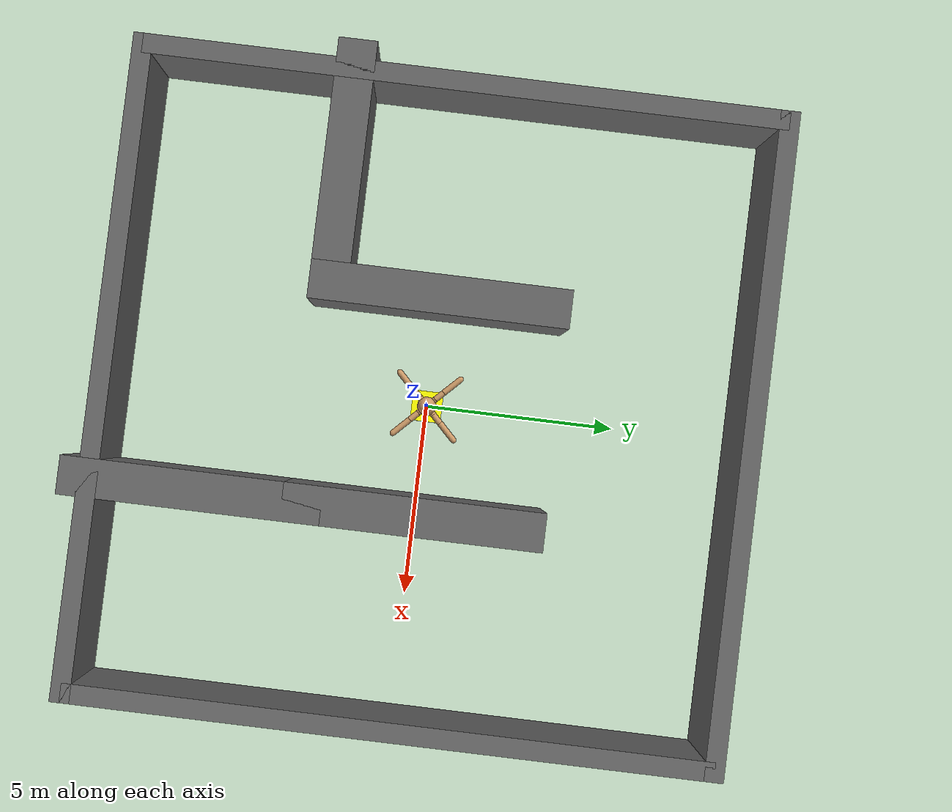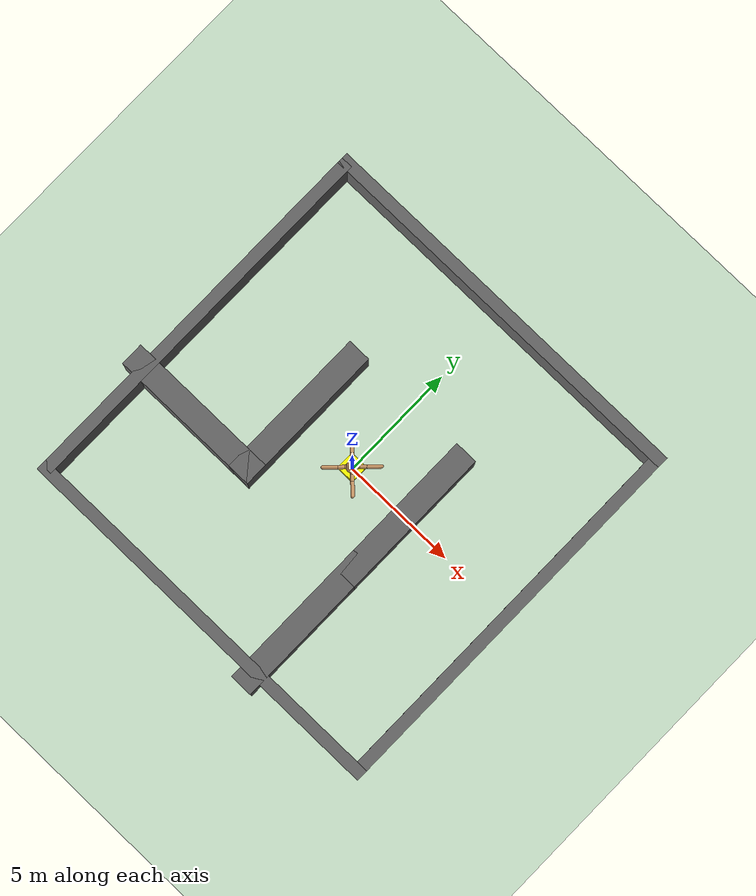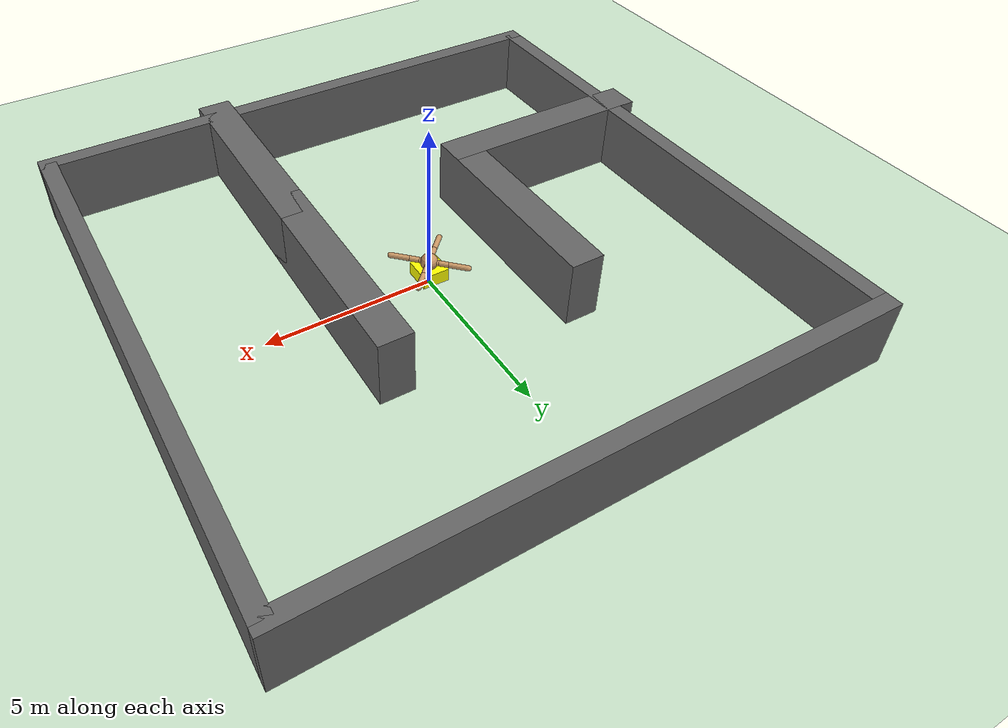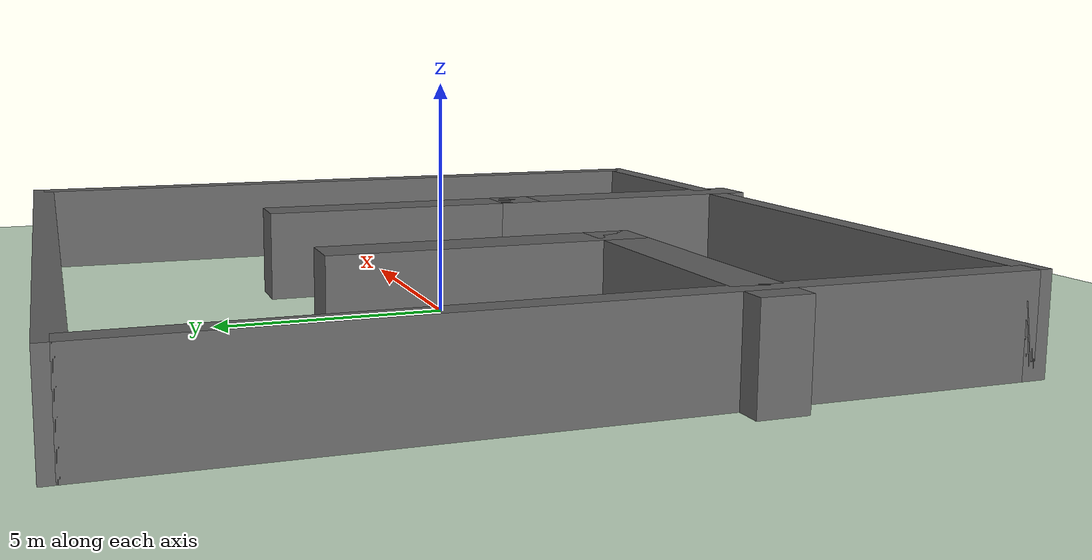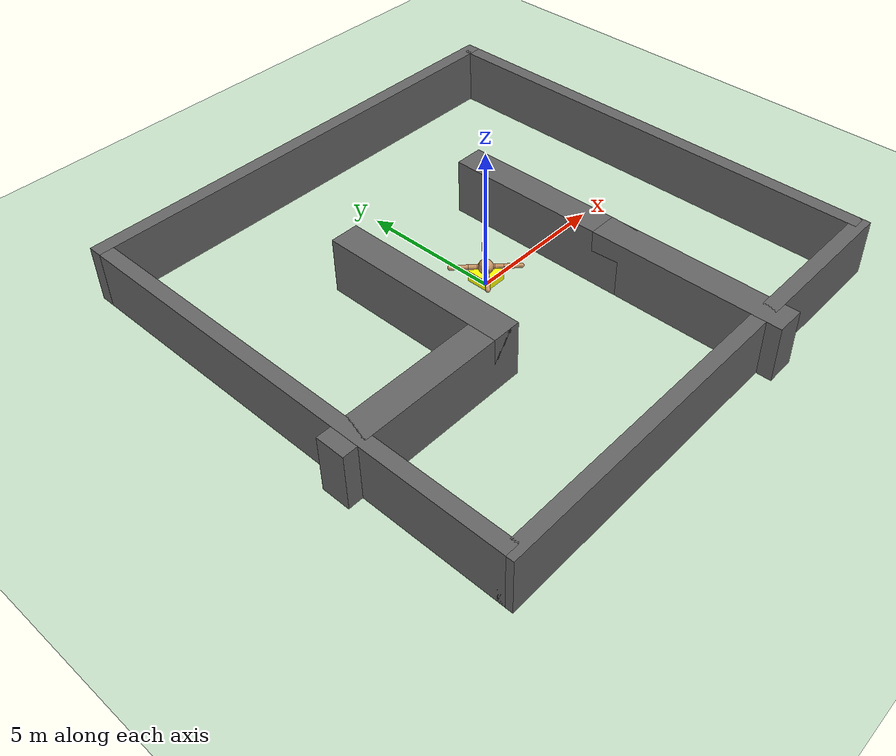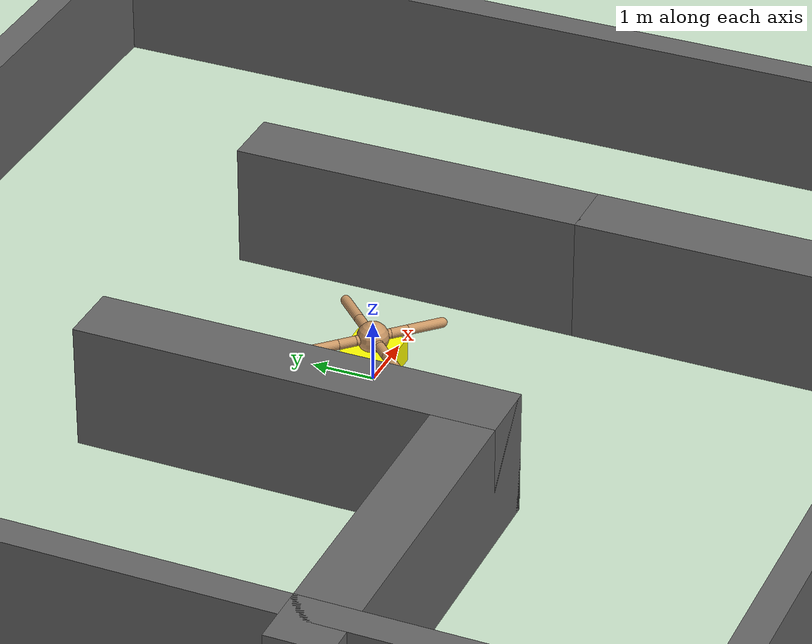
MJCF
<mujoco model="ant">
  <compiler angle="degree" coordinate="local" inertiafromgeom="true" />
  <option integrator="RK4" timestep="0.02" />
  <custom>
    <numeric data="0.0 0.0 0.55 1.0 0.0 0.0 0.0 0.0 1.0 0.0 -1.0 0.0 -1.0 0.0 1.0" name="init_qpos" />
  </custom>
  <default>
    <joint armature="1" damping="1" limited="true" />
    <geom conaffinity="0" condim="3" density="5.0" friction="1 0.5 0.5" margin="0.01" rgba="0.8 0.6 0.4 1" />
  </default>
  <asset>
    <texture builtin="gradient" height="100" rgb1="1 1 1" rgb2="0 0 0" type="skybox" width="100" />
    <texture builtin="flat" height="1278" mark="cross" markrgb="1 1 1" name="texgeom" random="0.01" rgb1="0.8 0.6 0.4" rgb2="0.8 0.6 0.4" type="cube" width="127" />
    <texture builtin="flat" height="100" name="texplane" rgb1="0.4 0.3 0.2" rgb2="0.4 0.3 0.2" type="2d" width="100" />
    <material name="MatPlane" reflectance="0.5" shininess="1" specular="1" texrepeat="60 60" texture="texplane" />
    <material name="geom" texture="texgeom" texuniform="true" />
  </asset>
  <worldbody>
    <light cutoff="50" diffuse="1 1 1" dir="-0 0 -1.3" directional="true" exponent="1" pos="0 0 1.3" specular=".1 .1 .1" />
    <geom conaffinity="1" condim="3" material="MatPlane" name="floor" pos="0 0 0" rgba="0.8 0.9 0.8 1" size="40 40 40" type="plane" />
    <body name="torso" pos="0 0 0.75">
      <camera mode="trackcom" name="track" pos="0 -3 0.3" xyaxes="1 0 0 0 0 1" />
      <geom name="torso_geom" pos="0 0 0" size="0.25" type="sphere" />
      <joint armature="0" damping="0" limited="false" margin="0.01" name="root" pos="0 0 0" type="free" />
      <body name="front_left_leg" pos="0 0 0">
        <geom fromto="0.0 0.0 0.0 0.2 0.2 0.0" name="aux_1_geom" size="0.08" type="capsule" />
        <body name="aux_1" pos="0.2 0.2 0">
          <joint axis="0 0 1" name="hip_1" pos="0.0 0.0 0.0" range="-30 30" type="hinge" />
          <geom fromto="0.0 0.0 0.0 0.2 0.2 0.0" name="left_leg_geom" size="0.08" type="capsule" />
          <body pos="0.2 0.2 0">
            <joint axis="-1 1 0" name="ankle_1" pos="0.0 0.0 0.0" range="30 70" type="hinge" />
            <geom fromto="0.0 0.0 0.0 0.4 0.4 0.0" name="left_ankle_geom" size="0.08" type="capsule" />
          </body>
        </body>
      </body>
      <body name="front_right_leg" pos="0 0 0">
        <geom fromto="0.0 0.0 0.0 -0.2 0.2 0.0" name="aux_2_geom" size="0.08" type="capsule" />
        <body name="aux_2" pos="-0.2 0.2 0">
          <joint axis="0 0 1" name="hip_2" pos="0.0 0.0 0.0" range="-30 30" type="hinge" />
          <geom fromto="0.0 0.0 0.0 -0.2 0.2 0.0" name="right_leg_geom" size="0.08" type="capsule" />
          <body pos="-0.2 0.2 0">
            <joint axis="1 1 0" name="ankle_2" pos="0.0 0.0 0.0" range="-70 -30" type="hinge" />
            <geom fromto="0.0 0.0 0.0 -0.4 0.4 0.0" name="right_ankle_geom" size="0.08" type="capsule" />
          </body>
        </body>
      </body>
      <body name="back_leg" pos="0 0 0">
        <geom fromto="0.0 0.0 0.0 -0.2 -0.2 0.0" name="aux_3_geom" size="0.08" type="capsule" />
        <body name="aux_3" pos="-0.2 -0.2 0">
          <joint axis="0 0 1" name="hip_3" pos="0.0 0.0 0.0" range="-30 30" type="hinge" />
          <geom fromto="0.0 0.0 0.0 -0.2 -0.2 0.0" name="back_leg_geom" size="0.08" type="capsule" />
          <body pos="-0.2 -0.2 0">
            <joint axis="-1 1 0" name="ankle_3" pos="0.0 0.0 0.0" range="-70 -30" type="hinge" />
            <geom fromto="0.0 0.0 0.0 -0.4 -0.4 0.0" name="third_ankle_geom" size="0.08" type="capsule" />
          </body>
        </body>
      </body>
      <body name="right_back_leg" pos="0 0 0">
        <geom fromto="0.0 0.0 0.0 0.2 -0.2 0.0" name="aux_4_geom" size="0.08" type="capsule" />
        <body name="aux_4" pos="0.2 -0.2 0">
          <joint axis="0 0 1" name="hip_4" pos="0.0 0.0 0.0" range="-30 30" type="hinge" />
          <geom fromto="0.0 0.0 0.0 0.2 -0.2 0.0" name="rightback_leg_geom" size="0.08" type="capsule" />
          <body pos="0.2 -0.2 0">
            <joint axis="1 1 0" name="ankle_4" pos="0.0 0.0 0.0" range="30 70" type="hinge" />
            <geom fromto="0.0 0.0 0.0 0.4 -0.4 0.0" name="fourth_ankle_geom" size="0.08" type="capsule" />
          </body>
        </body>
      </body>
    </body>

    <body name="east_wall" pos="8.25 0 1">
      <geom conaffinity="1" contype="1" rgba="0.4 0.4 0.4 1" size="0.25 8.25 1" type="box" />
    </body>
    <body name="north_wall" pos="0 8.25 1">
      <geom conaffinity="1" contype="1" rgba="0.4 0.4 0.4 1" size="8.5 0.25 1" type="box" />
    </body>
    <body name="west_wall" pos="-8.25 0 1">
      <geom conaffinity="1" contype="1" rgba="0.4 0.4 0.4 1" size="0.25 8.25 1" type="box" />
    </body>
    <body name="south_wall" pos="0 -8.25 1">
      <geom conaffinity="1" contype="1" rgba="0.4 0.4 0.4 1" size="8.5 0.25 1" type="box" />
    </body>

    <body mocap="true" name="goal_platform" pos="0 0 0.4">
				<site rgba="1 1 0 1" size="0.4 0.4 0.2" type="box" />
		</body>

    <body mocap="true" name="subgoal_0" pos="0 0 0.4">
				<site rgba="1 0 1 0" size="0.4 0.4 0.2" type="box" />
		</body>
    <body mocap="true" name="subgoal_1" pos="0 0 0.4">
				<site rgba="0 1 0 0" size="0.4 0.4 0.2" type="box" />
		</body>
    <body mocap="true" name="subgoal_2" pos="3.0 3.0 0.4">
				<site rgba="0 1 1 0" size="0.2" type="sphere" />
		</body>

  <body name="wall_0" pos="-2.833333333333333 0.0 1.0"><geom conaffinity="1" contype="1" rgba="0.4 0.4 0.4 1" size="0.5 3.3333333333333335 1.0" type="box" /></body><body name="wall_1" pos="2.833333333333334 -5.666666666666666 1.0"><geom conaffinity="1" contype="1" rgba="0.4 0.4 0.4 1" size="0.5 3.3333333333333335 1.0" type="box" /></body><body name="wall_2" pos="2.833333333333334 0.0 1.0"><geom conaffinity="1" contype="1" rgba="0.4 0.4 0.4 1" size="0.5 3.3333333333333335 1.0" type="box" /></body><body name="wall_3" pos="-5.666666666666666 -2.833333333333333 1.0"><geom conaffinity="1" contype="1" rgba="0.4 0.4 0.4 1" size="3.3333333333333335 0.5 1.0" type="box" /></body></worldbody>
  <actuator>
    <motor ctrllimited="true" ctrlrange="-1.0 1.0" gear="15" joint="hip_4" />
    <motor ctrllimited="true" ctrlrange="-1.0 1.0" gear="15" joint="ankle_4" />
    <motor ctrllimited="true" ctrlrange="-1.0 1.0" gear="15" joint="hip_1" />
    <motor ctrllimited="true" ctrlrange="-1.0 1.0" gear="15" joint="ankle_1" />
    <motor ctrllimited="true" ctrlrange="-1.0 1.0" gear="15" joint="hip_2" />
    <motor ctrllimited="true" ctrlrange="-1.0 1.0" gear="15" joint="ankle_2" />
    <motor ctrllimited="true" ctrlrange="-1.0 1.0" gear="15" joint="hip_3" />
    <motor ctrllimited="true" ctrlrange="-1.0 1.0" gear="15" joint="ankle_3" />
  </actuator>
</mujoco>
